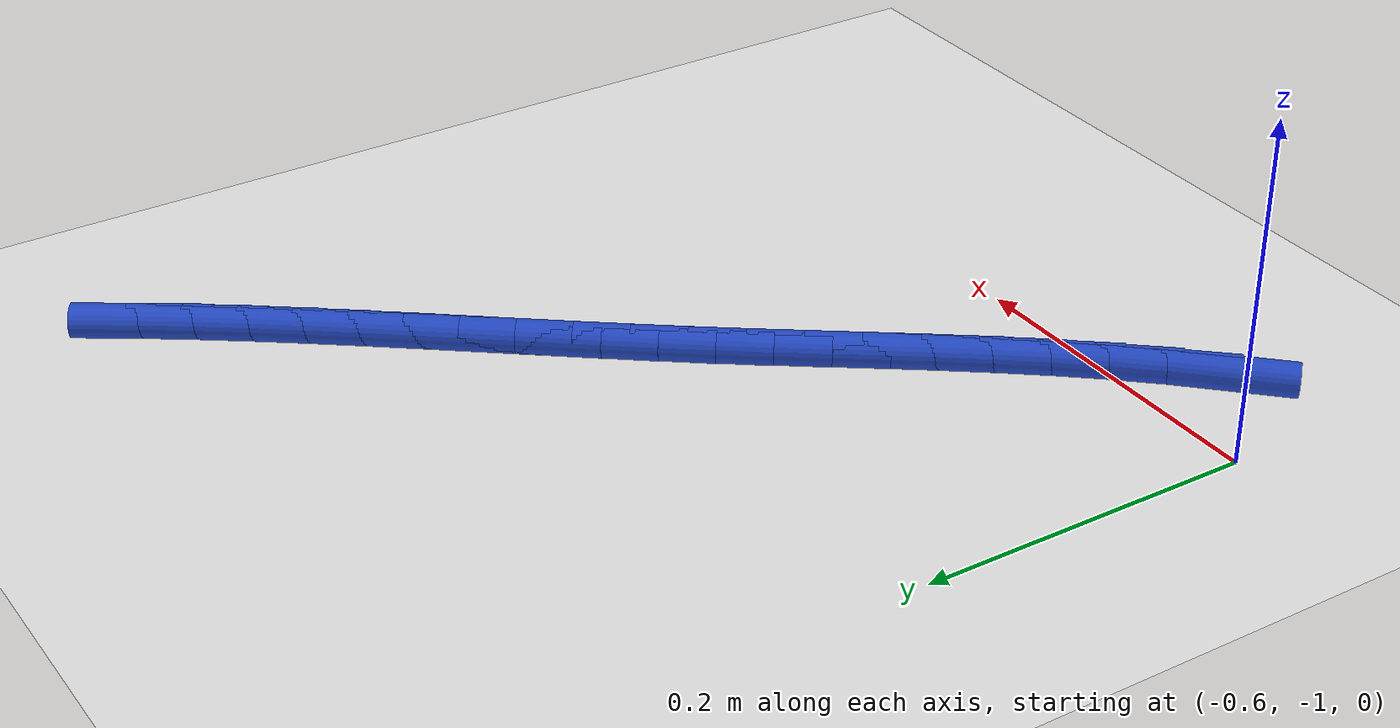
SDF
<sdf version="1.6">
 <world name="default">
  <model name="ground_plane">
   <static>1</static>
   <link name="link">
    <collision name="collision">
     <geometry><plane><normal>0 0 1</normal><size>100 100</size></plane></geometry>
     <surface><friction><ode><mu>100</mu><mu2>50</mu2></ode></friction></surface>
    </collision>
    <visual name="visual">
     <cast_shadows>0</cast_shadows>
     <geometry><plane><normal>0 0 1</normal><size>100 100</size></plane></geometry>
     <material>
      <script><uri>file://media/materials/scripts/gazebo.material</uri><name>Gazebo/WhiteGlow</name></script>
     </material>
    </visual>
   </link>
  </model>
  <model name="line">
   <link name="link_192">
    <pose>-0.5414484122393318 -1.0448439689433344 0.01 0 1.57 0.8026588508183342</pose>
    <collision name="collision">
     <geometry><cylinder><radius>0.01</radius><length>0.08</length></cylinder></geometry>
    </collision>
    <visual name="visual">
     <material>
      <script><name>Gazebo/Blue</name><uri>file://media/materials/scripts/gazebo.material</uri></script>
     </material>
     <geometry><cylinder><radius>0.01</radius><length>0.08</length></cylinder></geometry>
    </visual>
   </link>
   <link name="link_193">
    <pose>-0.5197699728443982 -1.0224039388008097 0.01 0 1.57 0.8469470883577448</pose>
    <collision name="collision">
     <geometry><cylinder><radius>0.01</radius><length>0.08</length></cylinder></geometry>
    </collision>
    <visual name="visual">
     <material>
      <script><name>Gazebo/Blue</name><uri>file://media/materials/scripts/gazebo.material</uri></script>
     </material>
     <geometry><cylinder><radius>0.01</radius><length>0.08</length></cylinder></geometry>
    </visual>
   </link>
   <link name="link_194">
    <pose>-0.49896365939407944 -0.9988647559022673 0.01 0 1.57 0.8831049987810907</pose>
    <collision name="collision">
     <geometry><cylinder><radius>0.01</radius><length>0.08</length></cylinder></geometry>
    </collision>
    <visual name="visual">
     <material>
      <script><name>Gazebo/Blue</name><uri>file://media/materials/scripts/gazebo.material</uri></script>
     </material>
     <geometry><cylinder><radius>0.01</radius><length>0.08</length></cylinder></geometry>
    </visual>
   </link>
   <link name="link_195">
    <pose>-0.4788798780790293 -0.9744159357099326 0.01 0 1.57 0.9113643190368986</pose>
    <collision name="collision">
     <geometry><cylinder><radius>0.01</radius><length>0.08</length></cylinder></geometry>
    </collision>
    <visual name="visual">
     <material>
      <script><name>Gazebo/Blue</name><uri>file://media/materials/scripts/gazebo.material</uri></script>
     </material>
     <geometry><cylinder><radius>0.01</radius><length>0.08</length></cylinder></geometry>
    </visual>
   </link>
   <link name="link_196">
    <pose>-0.4593690350899022 -0.9492469936860319 0.01 0 1.57 0.931972480325513</pose>
    <collision name="collision">
     <geometry><cylinder><radius>0.01</radius><length>0.08</length></cylinder></geometry>
    </collision>
    <visual name="visual">
     <material>
      <script><name>Gazebo/Blue</name><uri>file://media/materials/scripts/gazebo.material</uri></script>
     </material>
     <geometry><cylinder><radius>0.01</radius><length>0.08</length></cylinder></geometry>
    </visual>
   </link>
   <link name="link_197">
    <pose>-0.44028153661735153 -0.9235474452927904 0.01 0 1.57 0.945144250019123</pose>
    <collision name="collision">
     <geometry><cylinder><radius>0.01</radius><length>0.08</length></cylinder></geometry>
    </collision>
    <visual name="visual">
     <material>
      <script><name>Gazebo/Blue</name><uri>file://media/materials/scripts/gazebo.material</uri></script>
     </material>
     <geometry><cylinder><radius>0.01</radius><length>0.08</length></cylinder></geometry>
    </visual>
   </link>
   <link name="link_198">
    <pose>-0.4214677888520324 -0.8975068059924358 0.01 0 1.57 0.951030731019973</pose>
    <collision name="collision">
     <geometry><cylinder><radius>0.01</radius><length>0.08</length></cylinder></geometry>
    </collision>
    <visual name="visual">
     <material>
      <script><name>Gazebo/Blue</name><uri>file://media/materials/scripts/gazebo.material</uri></script>
     </material>
     <geometry><cylinder><radius>0.01</radius><length>0.08</length></cylinder></geometry>
    </visual>
   </link>
   <link name="link_199">
    <pose>-0.40277819798459824 -0.8713145912471931 0.01 0 1.57 0.9497016700952068</pose>
    <collision name="collision">
     <geometry><cylinder><radius>0.01</radius><length>0.08</length></cylinder></geometry>
    </collision>
    <visual name="visual">
     <material>
      <script><name>Gazebo/Blue</name><uri>file://media/materials/scripts/gazebo.material</uri></script>
     </material>
     <geometry><cylinder><radius>0.01</radius><length>0.08</length></cylinder></geometry>
    </visual>
   </link>
   <link name="link_200">
    <pose>-0.3840631702057032 -0.8451603165192882 0.01 0 1.57 0.9411536161195764</pose>
    <collision name="collision">
     <geometry><cylinder><radius>0.01</radius><length>0.08</length></cylinder></geometry>
    </collision>
    <visual name="visual">
     <material>
      <script><name>Gazebo/Blue</name><uri>file://media/materials/scripts/gazebo.material</uri></script>
     </material>
     <geometry><cylinder><radius>0.01</radius><length>0.08</length></cylinder></geometry>
    </visual>
   </link>
   <link name="link_201">
    <pose>-0.36517344785413475 -0.8192331119616938 0.01 0 1.57 0.9284115648443579</pose>
    <collision name="collision">
     <geometry><cylinder><radius>0.01</radius><length>0.08</length></cylinder></geometry>
    </collision>
    <visual name="visual">
     <material>
      <script><name>Gazebo/Blue</name><uri>file://media/materials/scripts/gazebo.material</uri></script>
     </material>
     <geometry><cylinder><radius>0.01</radius><length>0.08</length></cylinder></geometry>
    </visual>
   </link>
   <link name="link_202">
    <pose>-0.3460269981222098 -0.7936450513481479 0.01 0 1.57 0.9183214741856486</pose>
    <collision name="collision">
     <geometry><cylinder><radius>0.01</radius><length>0.08</length></cylinder></geometry>
    </collision>
    <visual name="visual">
     <material>
      <script><name>Gazebo/Blue</name><uri>file://media/materials/scripts/gazebo.material</uri></script>
     </material>
     <geometry><cylinder><radius>0.01</radius><length>0.08</length></cylinder></geometry>
    </visual>
   </link>
   <link name="link_203">
    <pose>-0.32668983933660045 -0.7683385050799482 0.01 0 1.57 0.9118467176443062</pose>
    <collision name="collision">
     <geometry><cylinder><radius>0.01</radius><length>0.08</length></cylinder></geometry>
    </collision>
    <visual name="visual">
     <material>
      <script><name>Gazebo/Blue</name><uri>file://media/materials/scripts/gazebo.material</uri></script>
     </material>
     <geometry><cylinder><radius>0.01</radius><length>0.08</length></cylinder></geometry>
    </visual>
   </link>
   <link name="link_204">
    <pose>-0.3072477254030413 -0.7432332216829288 0.01 0 1.57 0.9090277591859806</pose>
    <collision name="collision">
     <geometry><cylinder><radius>0.01</radius><length>0.08</length></cylinder></geometry>
    </collision>
    <visual name="visual">
     <material>
      <script><name>Gazebo/Blue</name><uri>file://media/materials/scripts/gazebo.material</uri></script>
     </material>
     <geometry><cylinder><radius>0.01</radius><length>0.08</length></cylinder></geometry>
    </visual>
   </link>
   <link name="link_205">
    <pose>-0.28778641022726664 -0.7182489496829234 0.01 0 1.57 0.9098967282962086</pose>
    <collision name="collision">
     <geometry><cylinder><radius>0.01</radius><length>0.08</length></cylinder></geometry>
    </collision>
    <visual name="visual">
     <material>
      <script><name>Gazebo/Blue</name><uri>file://media/materials/scripts/gazebo.material</uri></script>
     </material>
     <geometry><cylinder><radius>0.01</radius><length>0.08</length></cylinder></geometry>
    </visual>
   </link>
   <link name="link_206">
    <pose>-0.2683916477150106 -0.6933054376057654 0.01 0 1.57 0.9144783326336574</pose>
    <collision name="collision">
     <geometry><cylinder><radius>0.01</radius><length>0.08</length></cylinder></geometry>
    </collision>
    <visual name="visual">
     <material>
      <script><name>Gazebo/Blue</name><uri>file://media/materials/scripts/gazebo.material</uri></script>
     </material>
     <geometry><cylinder><radius>0.01</radius><length>0.08</length></cylinder></geometry>
    </visual>
   </link>
   <link name="link_207">
    <pose>-0.2491491917720087 -0.6683224339772892 0.01 0 1.57 0.9227893209977028</pose>
    <collision name="collision">
     <geometry><cylinder><radius>0.01</radius><length>0.08</length></cylinder></geometry>
    </collision>
    <visual name="visual">
     <material>
      <script><name>Gazebo/Blue</name><uri>file://media/materials/scripts/gazebo.material</uri></script>
     </material>
     <geometry><cylinder><radius>0.01</radius><length>0.08</length></cylinder></geometry>
    </visual>
   </link>
   <link name="link_208">
    <pose>-0.2301447963039948 -0.6432196873233289 0.01 0 1.57 0.9348364339649398</pose>
    <collision name="collision">
     <geometry><cylinder><radius>0.01</radius><length>0.08</length></cylinder></geometry>
    </collision>
    <visual name="visual">
     <material>
      <script><name>Gazebo/Blue</name><uri>file://media/materials/scripts/gazebo.material</uri></script>
     </material>
     <geometry><cylinder><radius>0.01</radius><length>0.08</length></cylinder></geometry>
    </visual>
   </link>
   <link name="link_209">
    <pose>-0.21146421521670347 -0.6179169461697177 0.01 0 1.57 0.9506128306691841</pose>
    <collision name="collision">
     <geometry><cylinder><radius>0.01</radius><length>0.08</length></cylinder></geometry>
    </collision>
    <visual name="visual">
     <material>
      <script><name>Gazebo/Blue</name><uri>file://media/materials/scripts/gazebo.material</uri></script>
     </material>
     <geometry><cylinder><radius>0.01</radius><length>0.08</length></cylinder></geometry>
    </visual>
   </link>
   <link name="link_210">
    <pose>-0.19319320241586876 -0.592333959042289 0.01 0 1.57 0.9700930534962716</pose>
    <collision name="collision">
     <geometry><cylinder><radius>0.01</radius><length>0.08</length></cylinder></geometry>
    </collision>
    <visual name="visual">
     <material>
      <script><name>Gazebo/Blue</name><uri>file://media/materials/scripts/gazebo.material</uri></script>
     </material>
     <geometry><cylinder><radius>0.01</radius><length>0.08</length></cylinder></geometry>
    </visual>
   </link>
   <link name="link_211">
    <pose>-0.17541751180722612 -0.566390474466878 0.01 0 1.57 0.9932267015031215</pose>
    <collision name="collision">
     <geometry><cylinder><radius>0.01</radius><length>0.08</length></cylinder></geometry>
    </collision>
    <visual name="visual">
     <material>
      <script><name>Gazebo/Blue</name><uri>file://media/materials/scripts/gazebo.material</uri></script>
     </material>
     <geometry><cylinder><radius>0.01</radius><length>0.08</length></cylinder></geometry>
    </visual>
   </link>
  </model>
 </world>
</sdf>
